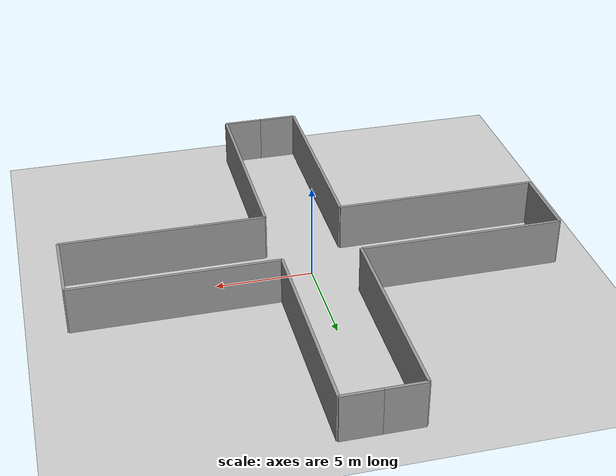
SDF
<?xml version="1.0"?>
<sdf version="1.6">
  <world name="default">

    <light name='sun' type='directional'>
      <cast_shadows>1</cast_shadows>
      <pose frame=''>0 0 10 0 -0 0</pose>
      <diffuse>0.8 0.8 0.8 1</diffuse>
      <specular>0.2 0.2 0.2 1</specular>
      <attenuation>
        <range>1000</range>
        <constant>0.9</constant>
        <linear>0.01</linear>
        <quadratic>0.001</quadratic>
      </attenuation>
      <direction>-0.5 0.1 -0.9</direction>
    </light>

    <model name='ground_plane'>
      <static>1</static>
      <link name='link'>
        <collision name='collision'>
          <geometry><plane><normal>0 0 1</normal><size>100 100</size></plane></geometry>
          <surface>
            <friction><ode><mu>100</mu><mu2>50</mu2></ode><torsional><ode/></torsional></friction>
            <contact><ode/></contact><bounce/>
          </surface>
          <max_contacts>10</max_contacts>
        </collision>
        <visual name='visual'>
          <cast_shadows>0</cast_shadows>
          <geometry><plane><normal>0 0 1</normal><size>100 100</size></plane></geometry>
          <material><script><uri>file://media/materials/scripts/gazebo.material</uri><name>Gazebo/Grey</name></script></material>
        </visual>
        <self_collide>0</self_collide><enable_wind>0</enable_wind><kinematic>0</kinematic>
      </link>
    </model>

    <gravity>0 0 -9.8</gravity>
    <magnetic_field>6e-06 2.3e-05 -4.2e-05</magnetic_field>
    <atmosphere type='adiabatic'/>
    <physics name='default_physics' default='0' type='ode'>
      <max_step_size>0.001</max_step_size>
      <real_time_factor>1</real_time_factor>
      <real_time_update_rate>1000</real_time_update_rate>
    </physics>
    <scene>
      <ambient>0.4 0.4 0.4 1</ambient>
      <background>0.7 0.7 0.7 1</background>
      <shadows>1</shadows>
    </scene>
    <audio><device>default</device></audio>
    <wind/>
    <spherical_coordinates>
      <surface_model>EARTH_WGS84</surface_model>
      <latitude_deg>0</latitude_deg><longitude_deg>0</longitude_deg>
      <elevation>0</elevation><heading_deg>0</heading_deg>
    </spherical_coordinates>

    <model name='cross_corridor'>
      <pose frame=''>0 0 0 0 0 0</pose>
      <static>1</static>

      <!-- 세로 복도 북쪽 벽 왼쪽 (y=12.5, x=-2~0) -->
      <link name='Wall_N_W'>
        <collision name='c'><geometry><box><size>2 0.15 2.5</size></box></geometry>
          <pose frame=''>0 0 1.25 0 0 0</pose><max_contacts>10</max_contacts>
          <surface><contact><ode/></contact><bounce/><friction><torsional><ode/></torsional><ode/></friction></surface>
        </collision>
        <visual name='v'><pose frame=''>0 0 1.25 0 0 0</pose>
          <geometry><box><size>2 0.15 2.5</size></box></geometry>
          <material><script><uri>file://media/materials/scripts/gazebo.material</uri><name>Gazebo/Grey</name></script><ambient>1 1 1 1</ambient></material>
        </visual>
        <pose frame=''>-1 12.5 0 0 0 0</pose>
        <self_collide>0</self_collide><enable_wind>0</enable_wind><kinematic>0</kinematic>
      </link>

      <!-- 세로 복도 북쪽 벽 오른쪽 (y=12.5, x=0~2) -->
      <link name='Wall_N_E'>
        <collision name='c'><geometry><box><size>2 0.15 2.5</size></box></geometry>
          <pose frame=''>0 0 1.25 0 0 0</pose><max_contacts>10</max_contacts>
          <surface><contact><ode/></contact><bounce/><friction><torsional><ode/></torsional><ode/></friction></surface>
        </collision>
        <visual name='v'><pose frame=''>0 0 1.25 0 0 0</pose>
          <geometry><box><size>2 0.15 2.5</size></box></geometry>
          <material><script><uri>file://media/materials/scripts/gazebo.material</uri><name>Gazebo/Grey</name></script><ambient>1 1 1 1</ambient></material>
        </visual>
        <pose frame=''>1 12.5 0 0 0 0</pose>
        <self_collide>0</self_collide><enable_wind>0</enable_wind><kinematic>0</kinematic>
      </link>

      <!-- 세로 복도 남쪽 벽 왼쪽 (y=-12.5, x=-2~0) -->
      <link name='Wall_S_W'>
        <collision name='c'><geometry><box><size>2 0.15 2.5</size></box></geometry>
          <pose frame=''>0 0 1.25 0 0 0</pose><max_contacts>10</max_contacts>
          <surface><contact><ode/></contact><bounce/><friction><torsional><ode/></torsional><ode/></friction></surface>
        </collision>
        <visual name='v'><pose frame=''>0 0 1.25 0 0 0</pose>
          <geometry><box><size>2 0.15 2.5</size></box></geometry>
          <material><script><uri>file://media/materials/scripts/gazebo.material</uri><name>Gazebo/Grey</name></script><ambient>1 1 1 1</ambient></material>
        </visual>
        <pose frame=''>-1 -12.5 0 0 0 0</pose>
        <self_collide>0</self_collide><enable_wind>0</enable_wind><kinematic>0</kinematic>
      </link>

      <!-- 세로 복도 남쪽 벽 오른쪽 (y=-12.5, x=0~2) -->
      <link name='Wall_S_E'>
        <collision name='c'><geometry><box><size>2 0.15 2.5</size></box></geometry>
          <pose frame=''>0 0 1.25 0 0 0</pose><max_contacts>10</max_contacts>
          <surface><contact><ode/></contact><bounce/><friction><torsional><ode/></torsional><ode/></friction></surface>
        </collision>
        <visual name='v'><pose frame=''>0 0 1.25 0 0 0</pose>
          <geometry><box><size>2 0.15 2.5</size></box></geometry>
          <material><script><uri>file://media/materials/scripts/gazebo.material</uri><name>Gazebo/Grey</name></script><ambient>1 1 1 1</ambient></material>
        </visual>
        <pose frame=''>1 -12.5 0 0 0 0</pose>
        <self_collide>0</self_collide><enable_wind>0</enable_wind><kinematic>0</kinematic>
      </link>

      <!-- 세로 복도 서쪽 벽 위 (x=-2, y=2~12.5) -->
      <link name='Wall_W_N'>
        <collision name='c'><geometry><box><size>0.15 10.5 2.5</size></box></geometry>
          <pose frame=''>0 0 1.25 0 0 0</pose><max_contacts>10</max_contacts>
          <surface><contact><ode/></contact><bounce/><friction><torsional><ode/></torsional><ode/></friction></surface>
        </collision>
        <visual name='v'><pose frame=''>0 0 1.25 0 0 0</pose>
          <geometry><box><size>0.15 10.5 2.5</size></box></geometry>
          <material><script><uri>file://media/materials/scripts/gazebo.material</uri><name>Gazebo/Grey</name></script><ambient>1 1 1 1</ambient></material>
        </visual>
        <pose frame=''>-2 7.25 0 0 0 0</pose>
        <self_collide>0</self_collide><enable_wind>0</enable_wind><kinematic>0</kinematic>
      </link>

      <!-- 세로 복도 서쪽 벽 아래 (x=-2, y=-12.5~-2) -->
      <link name='Wall_W_S'>
        <collision name='c'><geometry><box><size>0.15 10.5 2.5</size></box></geometry>
          <pose frame=''>0 0 1.25 0 0 0</pose><max_contacts>10</max_contacts>
          <surface><contact><ode/></contact><bounce/><friction><torsional><ode/></torsional><ode/></friction></surface>
        </collision>
        <visual name='v'><pose frame=''>0 0 1.25 0 0 0</pose>
          <geometry><box><size>0.15 10.5 2.5</size></box></geometry>
          <material><script><uri>file://media/materials/scripts/gazebo.material</uri><name>Gazebo/Grey</name></script><ambient>1 1 1 1</ambient></material>
        </visual>
        <pose frame=''>-2 -7.25 0 0 0 0</pose>
        <self_collide>0</self_collide><enable_wind>0</enable_wind><kinematic>0</kinematic>
      </link>

      <!-- 세로 복도 동쪽 벽 위 (x=2, y=2~12.5) -->
      <link name='Wall_E_N'>
        <collision name='c'><geometry><box><size>0.15 10.5 2.5</size></box></geometry>
          <pose frame=''>0 0 1.25 0 0 0</pose><max_contacts>10</max_contacts>
          <surface><contact><ode/></contact><bounce/><friction><torsional><ode/></torsional><ode/></friction></surface>
        </collision>
        <visual name='v'><pose frame=''>0 0 1.25 0 0 0</pose>
          <geometry><box><size>0.15 10.5 2.5</size></box></geometry>
          <material><script><uri>file://media/materials/scripts/gazebo.material</uri><name>Gazebo/Grey</name></script><ambient>1 1 1 1</ambient></material>
        </visual>
        <pose frame=''>2 7.25 0 0 0 0</pose>
        <self_collide>0</self_collide><enable_wind>0</enable_wind><kinematic>0</kinematic>
      </link>

      <!-- 세로 복도 동쪽 벽 아래 (x=2, y=-12.5~-2) -->
      <link name='Wall_E_S'>
        <collision name='c'><geometry><box><size>0.15 10.5 2.5</size></box></geometry>
          <pose frame=''>0 0 1.25 0 0 0</pose><max_contacts>10</max_contacts>
          <surface><contact><ode/></contact><bounce/><friction><torsional><ode/></torsional><ode/></friction></surface>
        </collision>
        <visual name='v'><pose frame=''>0 0 1.25 0 0 0</pose>
          <geometry><box><size>0.15 10.5 2.5</size></box></geometry>
          <material><script><uri>file://media/materials/scripts/gazebo.material</uri><name>Gazebo/Grey</name></script><ambient>1 1 1 1</ambient></material>
        </visual>
        <pose frame=''>2 -7.25 0 0 0 0</pose>
        <self_collide>0</self_collide><enable_wind>0</enable_wind><kinematic>0</kinematic>
      </link>

      <!-- 가로 복도 북쪽 벽 왼쪽 (y=2, x=-12.5~-2) -->
      <link name='Wall_N_left'>
        <collision name='c'><geometry><box><size>10.5 0.15 2.5</size></box></geometry>
          <pose frame=''>0 0 1.25 0 0 0</pose><max_contacts>10</max_contacts>
          <surface><contact><ode/></contact><bounce/><friction><torsional><ode/></torsional><ode/></friction></surface>
        </collision>
        <visual name='v'><pose frame=''>0 0 1.25 0 0 0</pose>
          <geometry><box><size>10.5 0.15 2.5</size></box></geometry>
          <material><script><uri>file://media/materials/scripts/gazebo.material</uri><name>Gazebo/Grey</name></script><ambient>1 1 1 1</ambient></material>
        </visual>
        <pose frame=''>-7.25 2 0 0 0 0</pose>
        <self_collide>0</self_collide><enable_wind>0</enable_wind><kinematic>0</kinematic>
      </link>

      <!-- 가로 복도 북쪽 벽 오른쪽 (y=2, x=2~12.5) -->
      <link name='Wall_N_right'>
        <collision name='c'><geometry><box><size>10.5 0.15 2.5</size></box></geometry>
          <pose frame=''>0 0 1.25 0 0 0</pose><max_contacts>10</max_contacts>
          <surface><contact><ode/></contact><bounce/><friction><torsional><ode/></torsional><ode/></friction></surface>
        </collision>
        <visual name='v'><pose frame=''>0 0 1.25 0 0 0</pose>
          <geometry><box><size>10.5 0.15 2.5</size></box></geometry>
          <material><script><uri>file://media/materials/scripts/gazebo.material</uri><name>Gazebo/Grey</name></script><ambient>1 1 1 1</ambient></material>
        </visual>
        <pose frame=''>7.25 2 0 0 0 0</pose>
        <self_collide>0</self_collide><enable_wind>0</enable_wind><kinematic>0</kinematic>
      </link>

      <!-- 가로 복도 남쪽 벽 왼쪽 (y=-2, x=-12.5~-2) -->
      <link name='Wall_S_left'>
        <collision name='c'><geometry><box><size>10.5 0.15 2.5</size></box></geometry>
          <pose frame=''>0 0 1.25 0 0 0</pose><max_contacts>10</max_contacts>
          <surface><contact><ode/></contact><bounce/><friction><torsional><ode/></torsional><ode/></friction></surface>
        </collision>
        <visual name='v'><pose frame=''>0 0 1.25 0 0 0</pose>
          <geometry><box><size>10.5 0.15 2.5</size></box></geometry>
          <material><script><uri>file://media/materials/scripts/gazebo.material</uri><name>Gazebo/Grey</name></script><ambient>1 1 1 1</ambient></material>
        </visual>
        <pose frame=''>-7.25 -2 0 0 0 0</pose>
        <self_collide>0</self_collide><enable_wind>0</enable_wind><kinematic>0</kinematic>
      </link>

      <!-- 가로 복도 남쪽 벽 오른쪽 (y=-2, x=2~12.5) -->
      <link name='Wall_S_right'>
        <collision name='c'><geometry><box><size>10.5 0.15 2.5</size></box></geometry>
          <pose frame=''>0 0 1.25 0 0 0</pose><max_contacts>10</max_contacts>
          <surface><contact><ode/></contact><bounce/><friction><torsional><ode/></torsional><ode/></friction></surface>
        </collision>
        <visual name='v'><pose frame=''>0 0 1.25 0 0 0</pose>
          <geometry><box><size>10.5 0.15 2.5</size></box></geometry>
          <material><script><uri>file://media/materials/scripts/gazebo.material</uri><name>Gazebo/Grey</name></script><ambient>1 1 1 1</ambient></material>
        </visual>
        <pose frame=''>7.25 -2 0 0 0 0</pose>
        <self_collide>0</self_collide><enable_wind>0</enable_wind><kinematic>0</kinematic>
      </link>

      <!-- 가로 복도 왼쪽 끝 벽 (x=-12.5) -->
      <link name='Wall_left_end'>
        <collision name='c'><geometry><box><size>0.15 4 2.5</size></box></geometry>
          <pose frame=''>0 0 1.25 0 0 0</pose><max_contacts>10</max_contacts>
          <surface><contact><ode/></contact><bounce/><friction><torsional><ode/></torsional><ode/></friction></surface>
        </collision>
        <visual name='v'><pose frame=''>0 0 1.25 0 0 0</pose>
          <geometry><box><size>0.15 4 2.5</size></box></geometry>
          <material><script><uri>file://media/materials/scripts/gazebo.material</uri><name>Gazebo/Grey</name></script><ambient>1 1 1 1</ambient></material>
        </visual>
        <pose frame=''>-12.5 0 0 0 0 0</pose>
        <self_collide>0</self_collide><enable_wind>0</enable_wind><kinematic>0</kinematic>
      </link>

      <!-- 가로 복도 오른쪽 끝 벽 (x=12.5) -->
      <link name='Wall_right_end'>
        <collision name='c'><geometry><box><size>0.15 4 2.5</size></box></geometry>
          <pose frame=''>0 0 1.25 0 0 0</pose><max_contacts>10</max_contacts>
          <surface><contact><ode/></contact><bounce/><friction><torsional><ode/></torsional><ode/></friction></surface>
        </collision>
        <visual name='v'><pose frame=''>0 0 1.25 0 0 0</pose>
          <geometry><box><size>0.15 4 2.5</size></box></geometry>
          <material><script><uri>file://media/materials/scripts/gazebo.material</uri><name>Gazebo/Grey</name></script><ambient>1 1 1 1</ambient></material>
        </visual>
        <pose frame=''>12.5 0 0 0 0 0</pose>
        <self_collide>0</self_collide><enable_wind>0</enable_wind><kinematic>0</kinematic>
      </link>

    </model>

    <gui fullscreen='0'>
      <camera name='user_camera'>
        <pose frame=''>0 0 35 0 1.5707 0</pose>
        <view_controller>orbit</view_controller>
        <projection_type>perspective</projection_type>
      </camera>
    </gui>

  </world>
</sdf>
